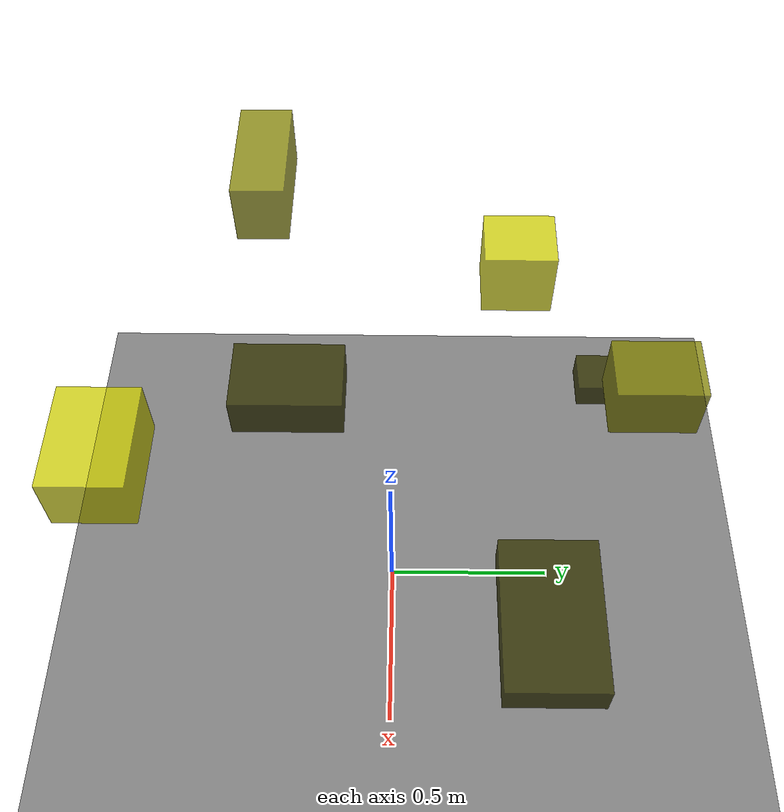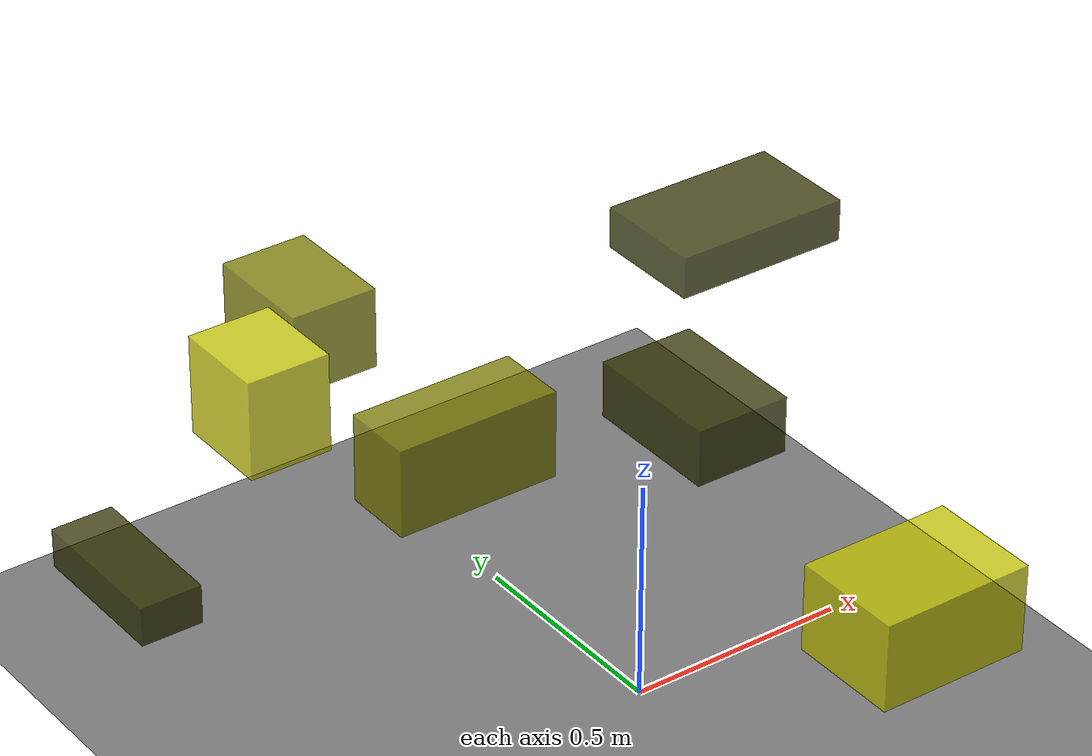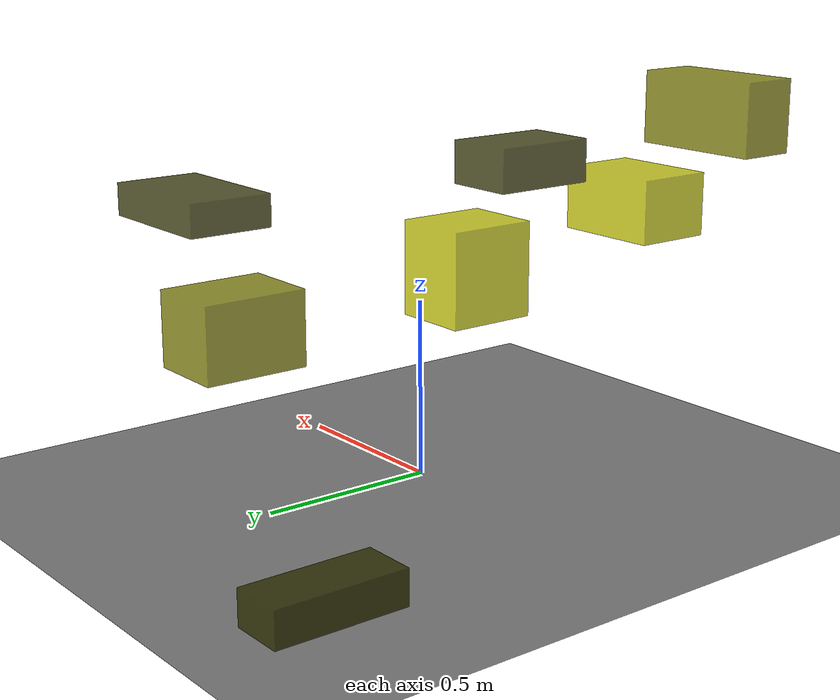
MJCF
<?xml version="1.0"?>
<mujoco model="obstacle_scene">
  <compiler angle="radian" coordinate="local"/>
  <option timestep="0.001" gravity="0 0 -9.81"/>

  <asset>
    <material name="obstacle_mat" rgba="0.8 0.8 0.0 0.8"/>
    <material name="ground_mat" rgba="0.5 0.5 0.5 1"/>
  </asset>

  <worldbody>
    <!-- Ground plane -->
    <geom name="ground" type="plane" size="3 3 0.1" material="ground_mat"/>

    <!-- Obstacles -->
    <body name="obstacle_0" pos="-0.713266 0.819723 0.114263">
      <geom name="obs_0" type="box" size="0.072696 0.176048 0.046467" rgba="0.2 0.2 0.0 0.8"/>
    </body>
    <body name="obstacle_1" pos="-0.706291 -0.364907 1.066618">
      <geom name="obs_1" type="box" size="0.166524 0.072930 0.089658" rgba="0.5 0.5 0.0 0.8"/>
    </body>
    <body name="obstacle_2" pos="-0.000212 -0.811605 0.681919">
      <geom name="obs_2" type="box" size="0.163554 0.119330 0.094458" rgba="0.8 0.8 0.0 0.8"/>
    </body>
    <body name="obstacle_3" pos="-0.095660 -0.270940 0.870656">
      <geom name="obs_3" type="box" size="0.101491 0.148528 0.060178" rgba="0.2 0.2 0.0 0.8"/>
    </body>
    <body name="obstacle_4" pos="-0.298597 0.775298 0.621056">
      <geom name="obs_4" type="box" size="0.098923 0.131282 0.092805" rgba="0.5 0.5 0.0 0.8"/>
    </body>
    <body name="obstacle_5" pos="-0.649487 0.374121 0.770461">
      <geom name="obs_5" type="box" size="0.091438 0.105455 0.109516" rgba="0.8 0.8 0.0 0.8"/>
    </body>
    <body name="obstacle_6" pos="0.511215 0.404644 0.737455">
      <geom name="obs_6" type="box" size="0.201597 0.126499 0.047264" rgba="0.2 0.2 0.0 0.8"/>
    </body>
  </worldbody>
</mujoco>
